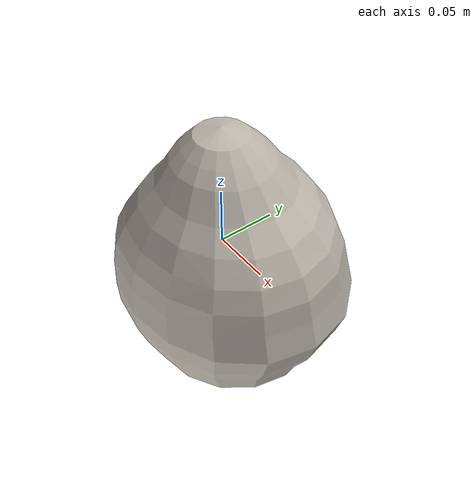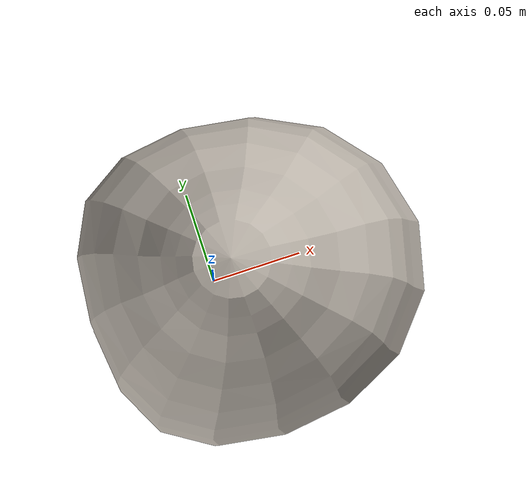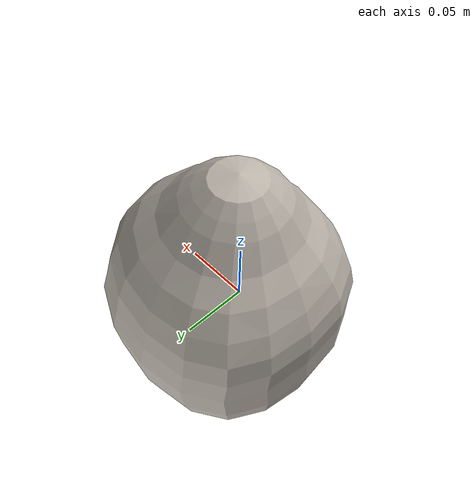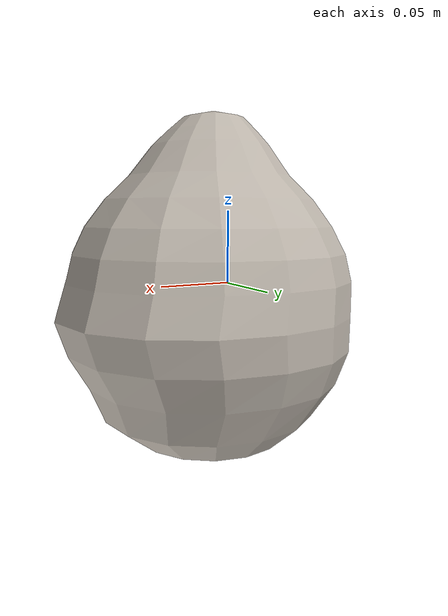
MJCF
<mujoco model="Lettuce_15">
  <compiler autolimits="true" boundmass="0.01" angle="radian"/>
  <default>
    <default class="/">
      <default class="__VISUAL_MJT__">
        <geom contype="0" conaffinity="0" group="0"/>
      </default>
      <default class="__STRUCTURAL_MJT__">
        <geom contype="8" conaffinity="15" group="4" friction="0.90000000000000002 0.90000000000000002 0.001" solref="0.025000000000000001 1" solimp="0.998 0.998 0.001"/>
      </default>
      <default class="__DYNAMIC_MJT__">
        <geom contype="1" conaffinity="15" group="4" friction="0.90000000000000002 0.90000000000000002 0.001" solref="0.025000000000000001 1" solimp="0.998 0.998 0.001"/>
      </default>
    </default>
  </default>
  <asset>
    <texture name="Lettuce2_Mat" type="2d" file="Lettuce2_AlbedoTransparency.png"/>
    <material name="material_Lettuce2_Mat" class="/" texture="Lettuce2_Mat" specular="0.5" shininess="0.5" rgba="1 1 1 1"/>
    <mesh name="Lettuce_15_lettuce_b5" class="/" file="Lettuce_15_lettuce_b5/Lettuce_15_lettuce_b5.obj" scale="1 1 1"/>
  </asset>
  <worldbody>
    <body name="Lettuce_15">
      <joint name="Lettuce_15_free" class="/" type="free" pos="0 0 0" axis="0 0 1" stiffness="0" range="0 0" armature="0" damping="0.10000000000000001" frictionloss="0"/>
      <body name="Lettuce_15_lettuce_b5" pos="0.010489999999999999 -0.0018699999999999999 -0.00022000000000000001" quat="1 0 0 0">
        <geom name="Lettuce_15_lettuce_b5" class="__VISUAL_MJT__" type="mesh" material="material_Lettuce2_Mat" shellinertia="true" mesh="Lettuce_15_lettuce_b5"/>
        <geom name="Lettuce_15_PrimitiveCollider_0" class="__DYNAMIC_MJT__" type="capsule" size="0.091048255562782288 0.012986190617084503" rgba="0 1 0 1" pos="0.0080122519284486771 0.0018683932721614838 -0.013739708811044693" quat="0.99814020414953497 1.6437270111671447e-06 -1.0536711610512063e-07 -0.06096009233598549"/>
        <geom name="Lettuce_15_PrimitiveCollider_1" class="__DYNAMIC_MJT__" type="capsule" size="0.056372053921222687 1.0000000000000001e-05" rgba="0 1 0 1" pos="0.0009195706807076931 -0.0013833746779710054 0.061745841056108475" quat="0.99990661408422454 1.8123144613858725e-06 -1.3170889981081736e-08 0.013666129932688504"/>
      </body>
    </body>
  </worldbody>
</mujoco>
